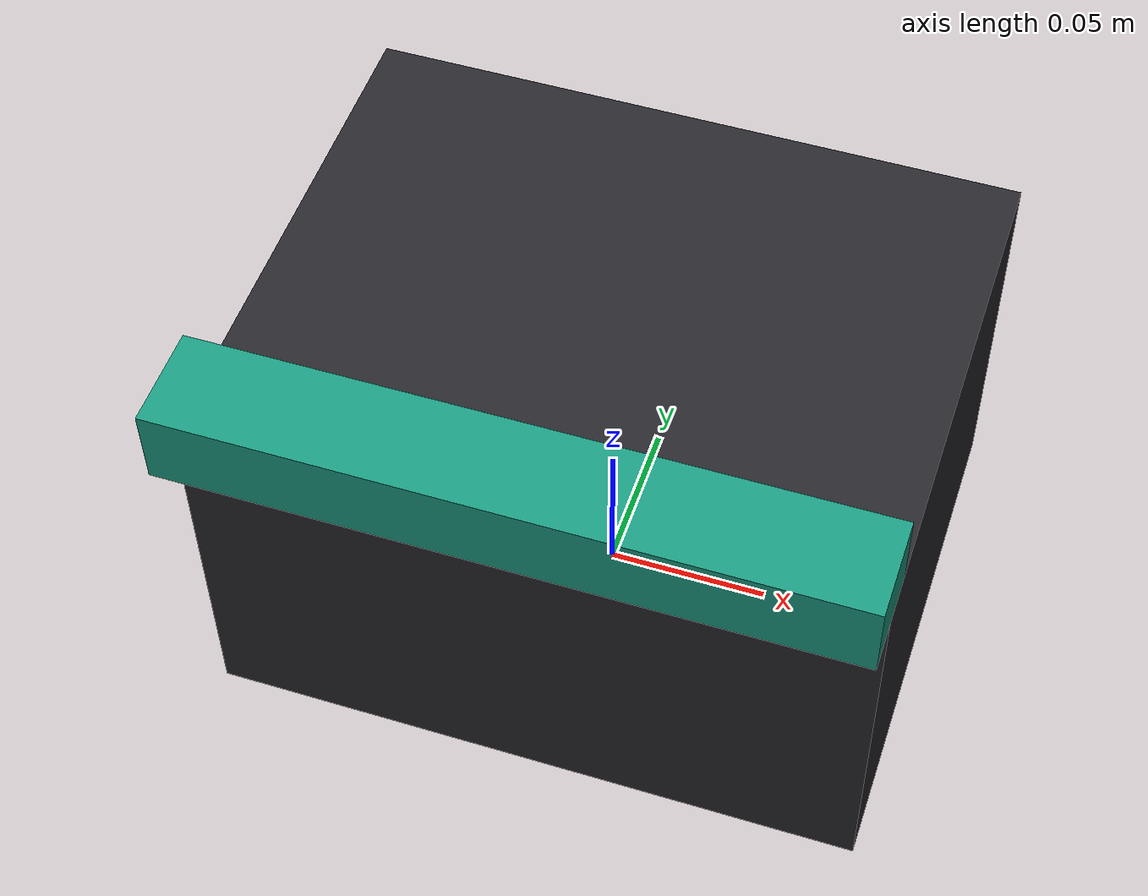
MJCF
<?xml version="1.0" encoding="utf-8"?>
<mujoco model="real_lab_hbku_qbri_imagestream">
  <compiler angle="radian" autolimits="true"/>
  <default>
    <default class="body"><geom contype="1" conaffinity="1"/></default>
  </default>
  <worldbody>
    <body name="base">
      <geom type="box" size="0.1 0.08 0.06" pos="0 0 0.06" rgba="0.15 0.15 0.17 1" class="body"/>
      <body name="lid" pos="0 -0.08 0.12">
        <joint name="lid_joint" type="hinge" axis="0 1 0" range="0 1.5" damping="0.6" frictionloss="0.25"/>
  <geom type="box" size="0.1 0.015 0.012" pos="0 0 0.012" rgba="0.1 0.6 0.5 1" class="body"/>
      </body>
    </body>
  </worldbody>
</mujoco>
